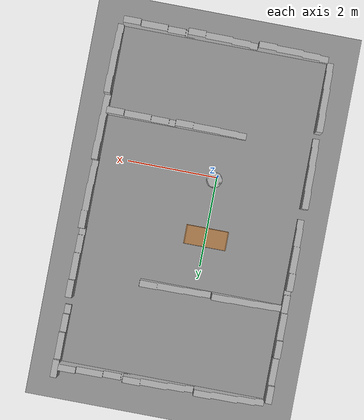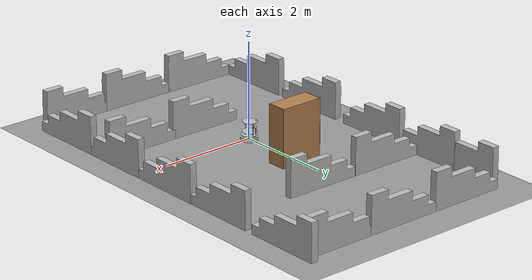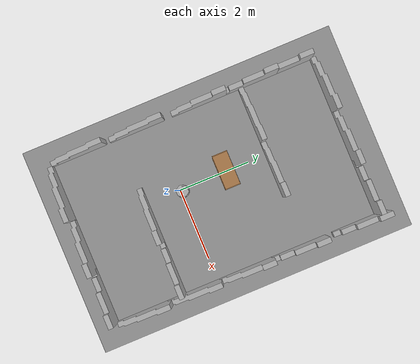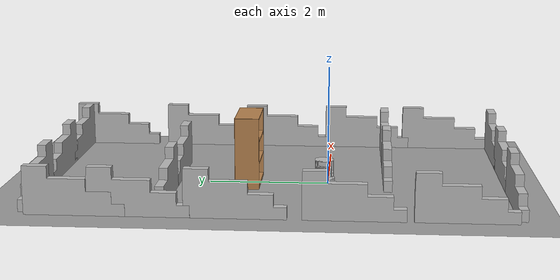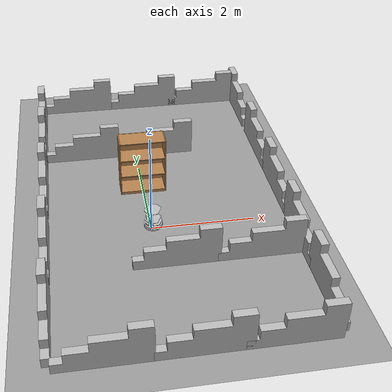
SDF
<sdf version="1.4">
 <world name="default">
  <light name="sun" type="directional">
   <pose>0 0 10 0 -0 0</pose>
   <diffuse>0.8 0.8 0.8 1</diffuse>
   <specular>0.2 0.2 0.2 1</specular>
   <attenuation>
    <range>1000</range>
    <constant>0.9</constant>
    <linear>0.01</linear>
    <quadratic>0.001</quadratic>
   </attenuation>
   <direction>0.5 0.1 -0.9</direction>
  </light>
  <scene><ambient>0.4 0.4 0.4 1</ambient><background>0.7 0.7 0.7 1</background><shadows>1</shadows></scene>
  <physics type="ode">
   <max_step_size>0.01</max_step_size>
   <real_time_factor>1</real_time_factor>
   <real_time_update_rate>100</real_time_update_rate>
   <gravity>0 0 -9.8</gravity>
  </physics>
  <model name="bookshelf">
   <static>1</static>
   <link name="link">
    <inertial><mass>1</mass></inertial>
    <collision name="back">
     <pose>0 0.005 0.6 0 -0 0</pose>
     <geometry><box><size>0.9 0.01 1.2</size></box></geometry>
    </collision>
    <visual name="visual1">
     <pose>0 0.005 0.6 0 -0 0</pose>
     <geometry><box><size>0.9 0.01 1.2</size></box></geometry>
     <material>
      <script><uri>file://media/materials/scripts/gazebo.material</uri><name>Gazebo/Wood</name></script>
     </material>
    </visual>
    <collision name="left_side">
     <pose>0.45 -0.195 0.6 0 -0 0</pose>
     <geometry><box><size>0.02 0.4 1.2</size></box></geometry>
    </collision>
    <visual name="visual2">
     <pose>0.45 -0.195 0.6 0 -0 0</pose>
     <geometry><box><size>0.02 0.4 1.2</size></box></geometry>
     <material>
      <script><uri>file://media/materials/scripts/gazebo.material</uri><name>Gazebo/Wood</name></script>
     </material>
    </visual>
    <collision name="right_side">
     <pose>-0.45 -0.195 0.6 0 -0 0</pose>
     <geometry><box><size>0.02 0.4 1.2</size></box></geometry>
    </collision>
    <visual name="visual3">
     <pose>-0.45 -0.195 0.6 0 -0 0</pose>
     <geometry><box><size>0.02 0.4 1.2</size></box></geometry>
     <material>
      <script><uri>file://media/materials/scripts/gazebo.material</uri><name>Gazebo/Wood</name></script>
     </material>
    </visual>
    <collision name="bottom">
     <pose>0 -0.195 0.03 0 -0 0</pose>
     <geometry><box><size>0.88 0.4 0.06</size></box></geometry>
    </collision>
    <visual name="visual4">
     <pose>0 -0.195 0.03 0 -0 0</pose>
     <geometry><box><size>0.88 0.4 0.06</size></box></geometry>
     <material>
      <script><uri>file://media/materials/scripts/gazebo.material</uri><name>Gazebo/Wood</name></script>
     </material>
    </visual>
    <collision name="top">
     <pose>0 -0.195 1.19 0 -0 0</pose>
     <geometry><box><size>0.88 0.4 0.02</size></box></geometry>
    </collision>
    <visual name="visual5">
     <pose>0 -0.195 1.19 0 -0 0</pose>
     <geometry><box><size>0.88 0.4 0.02</size></box></geometry>
     <material>
      <script><uri>file://media/materials/scripts/gazebo.material</uri><name>Gazebo/Wood</name></script>
     </material>
    </visual>
    <collision name="low_shelf">
     <pose>0 -0.195 0.43 0 -0 0</pose>
     <geometry><box><size>0.88 0.4 0.02</size></box></geometry>
    </collision>
    <visual name="visual6">
     <pose>0 -0.195 0.43 0 -0 0</pose>
     <geometry><box><size>0.88 0.4 0.02</size></box></geometry>
     <material>
      <script><uri>file://media/materials/scripts/gazebo.material</uri><name>Gazebo/Wood</name></script>
     </material>
    </visual>
    <collision name="high_shelf">
     <pose>0 -0.195 0.8 0 -0 0</pose>
     <geometry><box><size>0.88 0.4 0.02</size></box></geometry>
    </collision>
    <visual name="visual7">
     <pose>0 -0.195 0.8 0 -0 0</pose>
     <geometry><box><size>0.88 0.4 0.02</size></box></geometry>
     <material>
      <script><uri>file://media/materials/scripts/gazebo.material</uri><name>Gazebo/Wood</name></script>
     </material>
    </visual>
    <velocity_decay><linear>0</linear><angular>0</angular></velocity_decay>
   </link>
   <pose>0 1.53026 0 0 -0 0</pose>
  </model>
  <model name="ground_plane_0">
   <static>1</static>
   <link name="link">
    <collision name="collision">
     <geometry><plane><normal>0 0 1</normal><size>100 100</size></plane></geometry>
     <surface><friction><ode><mu>100</mu><mu2>50</mu2></ode></friction></surface>
    </collision>
    <visual name="visual">
     <cast_shadows>0</cast_shadows>
     <geometry><plane><normal>0 0 1</normal><size>100 100</size></plane></geometry>
     <material>
      <script><uri>file://media/materials/scripts/gazebo.material</uri><name>Gazebo/Grey</name></script>
     </material>
    </visual>
    <velocity_decay><linear>0</linear><angular>0</angular></velocity_decay>
   </link>
   <pose>0.497681 0 0 0 -0 0</pose>
  </model>
  <spherical_coordinates>
   <surface_model>EARTH_WGS84</surface_model>
   <latitude_deg>0</latitude_deg>
   <longitude_deg>0</longitude_deg>
   <elevation>0</elevation>
   <heading_deg>0</heading_deg>
  </spherical_coordinates>
  <model name="block_wall">
   <pose>-1 -3 0.30924 0 -0 0</pose>
   <static>1</static>
   <link name="blocks">
    <collision name="collision">
     <geometry><mesh><uri>model://drc_practice_block_wall/meshes/block_wall.dae</uri></mesh></geometry>
     <surface>
      <bounce><restitution_coefficient>0</restitution_coefficient><threshold>100000</threshold></bounce>
      <friction><ode><mu>100</mu><mu2>50</mu2></ode></friction>
      <contact>
       <ode><soft_cfm>0</soft_cfm><soft_erp>0.2</soft_erp><max_vel>0</max_vel><min_depth>0</min_depth></ode>
      </contact>
     </surface>
    </collision>
    <visual name="visual">
     <geometry><mesh><uri>model://drc_practice_block_wall/meshes/block_wall.dae</uri></mesh></geometry>
    </visual>
    <velocity_decay><linear>0</linear><angular>0</angular></velocity_decay>
   </link>
  </model>
  <model name="block_wall_0">
   <pose>0.563322 -3 0.30924 0 -0 0</pose>
   <static>1</static>
   <link name="blocks">
    <collision name="collision">
     <geometry><mesh><uri>model://drc_practice_block_wall/meshes/block_wall.dae</uri></mesh></geometry>
     <surface>
      <bounce><restitution_coefficient>0</restitution_coefficient><threshold>100000</threshold></bounce>
      <friction><ode><mu>100</mu><mu2>50</mu2></ode></friction>
      <contact>
       <ode><soft_cfm>0</soft_cfm><soft_erp>0.2</soft_erp><max_vel>0</max_vel><min_depth>0</min_depth></ode>
      </contact>
     </surface>
    </collision>
    <visual name="visual">
     <geometry><mesh><uri>model://drc_practice_block_wall/meshes/block_wall.dae</uri></mesh></geometry>
    </visual>
    <velocity_decay><linear>0</linear><angular>0</angular></velocity_decay>
   </link>
  </model>
  <model name="block_wall_1">
   <pose>2 -3 0.30924 0 -0 0</pose>
   <static>1</static>
   <link name="blocks">
    <collision name="collision">
     <geometry><mesh><uri>model://drc_practice_block_wall/meshes/block_wall.dae</uri></mesh></geometry>
     <surface>
      <bounce><restitution_coefficient>0</restitution_coefficient><threshold>100000</threshold></bounce>
      <friction><ode><mu>100</mu><mu2>50</mu2></ode></friction>
      <contact>
       <ode><soft_cfm>0</soft_cfm><soft_erp>0.2</soft_erp><max_vel>0</max_vel><min_depth>0</min_depth></ode>
      </contact>
     </surface>
    </collision>
    <visual name="visual">
     <geometry><mesh><uri>model://drc_practice_block_wall/meshes/block_wall.dae</uri></mesh></geometry>
    </visual>
    <velocity_decay><linear>0</linear><angular>0</angular></velocity_decay>
   </link>
  </model>
  <model name="mobile_base">
   <link name="base_footprint">
    <inertial>
     <pose>-0.00263512 -4.10874e-05 0.129243 0 -0 0</pose>
     <mass>4.6973</mass>
     <inertia>
      <ixx>0.1365</ixx>
      <ixy>-2.51802e-05</ixy>
      <ixz>0.0108194</ixz>
      <iyy>0.132157</iyy>
      <iyz>4.89572e-05</iyz>
      <izz>0.0741648</izz>
     </inertia>
    </inertial>
    <collision name="base_footprint_collision_base_link">
     <pose>0 0 0.06969 0 -0 0</pose>
     <geometry><cylinder><length>0.10938</length><radius>0.178</radius></cylinder></geometry>
     <surface><friction><ode><mu>0.3</mu><mu2>0.3</mu2></ode></friction></surface>
    </collision>
    <collision name="base_footprint_collision_camera_link">
     <pose>-0.087 -0.0015 0.2972 0 -0 0</pose>
     <geometry><box><size>0.073 0.276 0.072</size></box></geometry>
    </collision>
    <collision name="base_footprint_collision_caster_back_link">
     <pose>-0.135 0 0.0192 -1.5708 0 0</pose>
     <geometry><cylinder><length>0.0176</length><radius>0.017</radius></cylinder></geometry>
     <surface>
      <contact><ode><kp>1e+06</kp><kd>100</kd><max_vel>1</max_vel><min_depth>0.001</min_depth></ode></contact>
      <friction><ode><mu>0</mu><mu2>0</mu2></ode></friction>
     </surface>
    </collision>
    <collision name="base_footprint_collision_caster_front_link">
     <pose>0.115 0 0.0172 -1.5708 0 0</pose>
     <geometry><cylinder><length>0.0176</length><radius>0.017</radius></cylinder></geometry>
     <surface>
      <contact><ode><kp>1e+06</kp><kd>100</kd><max_vel>1</max_vel><min_depth>0.001</min_depth></ode></contact>
      <friction><ode><mu>0</mu><mu2>0</mu2></ode></friction>
     </surface>
    </collision>
    <collision name="base_footprint_collision_mount_asus_xtion_pro_link">
     <pose>-0.1024 0 0.2822 0 -0 0</pose>
     <geometry><box><size>0.033 0.276 0.012</size></box></geometry>
    </collision>
    <collision name="base_footprint_collision_plate_bottom_link">
     <pose>0 0 0.1408 0 -0 0</pose>
     <geometry><cylinder><length>0.006</length><radius>0.17</radius></cylinder></geometry>
    </collision>
    <collision name="base_footprint_collision_plate_middle_link">
     <pose>0 0 0.1976 0 -0 0</pose>
     <geometry><cylinder><length>0.006</length><radius>0.17</radius></cylinder></geometry>
    </collision>
    <collision name="base_footprint_collision_plate_top_link">
     <pose>0 0 0.4068 0 -0 0</pose>
     <geometry><cylinder><length>0.006</length><radius>0.17</radius></cylinder></geometry>
    </collision>
    <collision name="base_footprint_collision_pole_bottom_0_link">
     <pose>0.12 0.082 0.113 0 -0 0</pose>
     <geometry><cylinder><length>0.0492</length><radius>0.006</radius></cylinder></geometry>
    </collision>
    <collision name="base_footprint_collision_pole_bottom_1_link">
     <pose>0.055 0.12 0.113 0 -0 0</pose>
     <geometry><cylinder><length>0.0492</length><radius>0.006</radius></cylinder></geometry>
    </collision>
    <collision name="base_footprint_collision_pole_bottom_2_link">
     <pose>-0.055 0.12 0.113 0 -0 0</pose>
     <geometry><cylinder><length>0.0492</length><radius>0.006</radius></cylinder></geometry>
    </collision>
    <collision name="base_footprint_collision_pole_bottom_3_link">
     <pose>0.12 -0.082 0.113 0 -0 0</pose>
     <geometry><cylinder><length>0.0492</length><radius>0.006</radius></cylinder></geometry>
    </collision>
    <collision name="base_footprint_collision_pole_bottom_4_link">
     <pose>0.055 -0.12 0.113 0 -0 0</pose>
     <geometry><cylinder><length>0.0492</length><radius>0.006</radius></cylinder></geometry>
    </collision>
    <collision name="base_footprint_collision_pole_bottom_5_link">
     <pose>-0.055 -0.12 0.113 0 -0 0</pose>
     <geometry><cylinder><length>0.0492</length><radius>0.006</radius></cylinder></geometry>
    </collision>
    <collision name="base_footprint_collision_pole_kinect_0_link">
     <pose>-0.1024 0.098 0.2474 0 -0 0</pose>
     <geometry><cylinder><length>0.0936</length><radius>0.006</radius></cylinder></geometry>
    </collision>
    <collision name="base_footprint_collision_pole_kinect_1_link">
     <pose>-0.1024 -0.098 0.2474 0 -0 0</pose>
     <geometry><cylinder><length>0.0936</length><radius>0.006</radius></cylinder></geometry>
    </collision>
    <collision name="base_footprint_collision_pole_middle_0_link">
     <pose>0.0381 0.1505 0.1742 0 -0 0</pose>
     <geometry><cylinder><length>0.0608</length><radius>0.006</radius></cylinder></geometry>
    </collision>
    <collision name="base_footprint_collision_pole_middle_1_link">
     <pose>0.0381 -0.1505 0.1742 0 -0 0</pose>
     <geometry><cylinder><length>0.0608</length><radius>0.006</radius></cylinder></geometry>
    </collision>
    <collision name="base_footprint_collision_pole_middle_2_link">
     <pose>-0.0381 0.1505 0.1742 0 -0 0</pose>
     <geometry><cylinder><length>0.0608</length><radius>0.006</radius></cylinder></geometry>
    </collision>
    <collision name="base_footprint_collision_pole_middle_3_link">
     <pose>-0.0381 -0.1505 0.1742 0 -0 0</pose>
     <geometry><cylinder><length>0.0608</length><radius>0.006</radius></cylinder></geometry>
    </collision>
    <collision name="base_footprint_collision_pole_top_0_link">
     <pose>0.0381 0.1505 0.3022 0 -0 0</pose>
     <geometry><cylinder><length>0.2032</length><radius>0.006</radius></cylinder></geometry>
    </collision>
    <collision name="base_footprint_collision_pole_top_1_link">
     <pose>0.0381 -0.1505 0.3022 0 -0 0</pose>
     <geometry><cylinder><length>0.2032</length><radius>0.006</radius></cylinder></geometry>
    </collision>
    <collision name="base_footprint_collision_pole_top_2_link">
     <pose>-0.0381 0.1505 0.3022 0 -0 0</pose>
     <geometry><cylinder><length>0.2032</length><radius>0.006</radius></cylinder></geometry>
    </collision>
    <collision name="base_footprint_collision_pole_top_3_link">
     <pose>-0.0381 -0.1505 0.3022 0 -0 0</pose>
     <geometry><cylinder><length>0.2032</length><radius>0.006</radius></cylinder></geometry>
    </collision>
    <visual name="base_footprint_visual_base_link">
     <pose>0.001 0 0.06219 0 -0 0</pose>
     <geometry>
      <mesh><scale>1 1 1</scale><uri>/opt/ros/indigo/share/kobuki_description/meshes/main_body.dae</uri></mesh>
     </geometry>
    </visual>
    <visual name="base_footprint_visual_camera_link">
     <pose>-0.102 0.002 0.3012 0 -0 0</pose>
     <geometry>
      <mesh>
       <scale>1 1 1</scale>
       <uri>/opt/ros/indigo/share/turtlebot_description/meshes/sensors/xtion_pro_camera.dae</uri>
      </mesh>
     </geometry>
    </visual>
    <visual name="base_footprint_visual_mount_asus_xtion_pro_link">
     <pose>-0.1024 0 0.2822 -1.5708 0 0</pose>
     <geometry>
      <mesh>
       <scale>1 1 1</scale>
       <uri>/opt/ros/indigo/share/turtlebot_description/meshes/sensors/xtion_pro_stack.dae</uri>
      </mesh>
     </geometry>
    </visual>
    <visual name="base_footprint_visual_plate_bottom_link">
     <pose>0.02364 0 0.1408 0 -0 0</pose>
     <geometry>
      <mesh>
       <scale>1 1 1</scale>
       <uri>/opt/ros/indigo/share/turtlebot_description/meshes/stacks/hexagons/plate_bottom.dae</uri>
      </mesh>
     </geometry>
    </visual>
    <visual name="base_footprint_visual_plate_middle_link">
     <pose>-0.01364 0 0.1976 0 -0 0</pose>
     <geometry>
      <mesh>
       <scale>1 1 1</scale>
       <uri>/opt/ros/indigo/share/turtlebot_description/meshes/stacks/hexagons/plate_middle.dae</uri>
      </mesh>
     </geometry>
    </visual>
    <visual name="base_footprint_visual_plate_top_link">
     <pose>-0.01364 0 0.4068 0 -0 0</pose>
     <geometry>
      <mesh>
       <scale>1 1 1</scale>
       <uri>/opt/ros/indigo/share/turtlebot_description/meshes/stacks/hexagons/plate_top.dae</uri>
      </mesh>
     </geometry>
    </visual>
    <visual name="base_footprint_visual_pole_bottom_0_link">
     <pose>0.12 0.082 0.113 0 -0 0</pose>
     <geometry>
      <mesh>
       <scale>1 1 1</scale>
       <uri>/opt/ros/indigo/share/turtlebot_description/meshes/stacks/hexagons/pole_bottom.dae</uri>
      </mesh>
     </geometry>
    </visual>
    <visual name="base_footprint_visual_pole_bottom_1_link">
     <pose>0.055 0.12 0.113 0 -0 0</pose>
     <geometry>
      <mesh>
       <scale>1 1 1</scale>
       <uri>/opt/ros/indigo/share/turtlebot_description/meshes/stacks/hexagons/pole_bottom.dae</uri>
      </mesh>
     </geometry>
    </visual>
    <visual name="base_footprint_visual_pole_bottom_2_link">
     <pose>-0.055 0.12 0.113 0 -0 0</pose>
     <geometry>
      <mesh>
       <scale>1 1 1</scale>
       <uri>/opt/ros/indigo/share/turtlebot_description/meshes/stacks/hexagons/pole_bottom.dae</uri>
      </mesh>
     </geometry>
    </visual>
    <visual name="base_footprint_visual_pole_bottom_3_link">
     <pose>0.12 -0.082 0.113 0 -0 0</pose>
     <geometry>
      <mesh>
       <scale>1 1 1</scale>
       <uri>/opt/ros/indigo/share/turtlebot_description/meshes/stacks/hexagons/pole_bottom.dae</uri>
      </mesh>
     </geometry>
    </visual>
    <visual name="base_footprint_visual_pole_bottom_4_link">
     <pose>0.055 -0.12 0.113 0 -0 0</pose>
     <geometry>
      <mesh>
       <scale>1 1 1</scale>
       <uri>/opt/ros/indigo/share/turtlebot_description/meshes/stacks/hexagons/pole_bottom.dae</uri>
      </mesh>
     </geometry>
    </visual>
    <visual name="base_footprint_visual_pole_bottom_5_link">
     <pose>-0.055 -0.12 0.113 0 -0 0</pose>
     <geometry>
      <mesh>
       <scale>1 1 1</scale>
       <uri>/opt/ros/indigo/share/turtlebot_description/meshes/stacks/hexagons/pole_bottom.dae</uri>
      </mesh>
     </geometry>
    </visual>
    <visual name="base_footprint_visual_pole_kinect_0_link">
     <pose>-0.1024 0.098 0.2374 0 -0 0</pose>
     <geometry>
      <mesh>
       <scale>1 1 1</scale>
       <uri>/opt/ros/indigo/share/turtlebot_description/meshes/sensors/sensor_pole.dae</uri>
      </mesh>
     </geometry>
    </visual>
    <visual name="base_footprint_visual_pole_kinect_1_link">
     <pose>-0.1024 -0.098 0.2374 0 -0 0</pose>
     <geometry>
      <mesh>
       <scale>1 1 1</scale>
       <uri>/opt/ros/indigo/share/turtlebot_description/meshes/sensors/sensor_pole.dae</uri>
      </mesh>
     </geometry>
    </visual>
    <visual name="base_footprint_visual_pole_middle_0_link">
     <pose>0.0381 0.1505 0.1742 3.14159 -2.06823e-13 3.14159</pose>
     <geometry>
      <mesh>
       <scale>1 1 1</scale>
       <uri>/opt/ros/indigo/share/turtlebot_description/meshes/stacks/hexagons/pole_middle.dae</uri>
      </mesh>
     </geometry>
    </visual>
    <visual name="base_footprint_visual_pole_middle_1_link">
     <pose>0.0381 -0.1505 0.1742 3.14159 -2.06823e-13 3.14159</pose>
     <geometry>
      <mesh>
       <scale>1 1 1</scale>
       <uri>/opt/ros/indigo/share/turtlebot_description/meshes/stacks/hexagons/pole_middle.dae</uri>
      </mesh>
     </geometry>
    </visual>
    <visual name="base_footprint_visual_pole_middle_2_link">
     <pose>-0.0381 0.1505 0.1742 3.14159 -2.06823e-13 3.14159</pose>
     <geometry>
      <mesh>
       <scale>1 1 1</scale>
       <uri>/opt/ros/indigo/share/turtlebot_description/meshes/stacks/hexagons/pole_middle.dae</uri>
      </mesh>
     </geometry>
    </visual>
    <visual name="base_footprint_visual_pole_middle_3_link">
     <pose>-0.0381 -0.1505 0.1742 3.14159 -2.06823e-13 3.14159</pose>
     <geometry>
      <mesh>
       <scale>1 1 1</scale>
       <uri>/opt/ros/indigo/share/turtlebot_description/meshes/stacks/hexagons/pole_middle.dae</uri>
      </mesh>
     </geometry>
    </visual>
    <visual name="base_footprint_visual_pole_top_0_link">
     <pose>0.0381 0.1505 0.3022 0 -0 0</pose>
     <geometry>
      <mesh>
       <scale>1 1 1</scale>
       <uri>/opt/ros/indigo/share/turtlebot_description/meshes/stacks/hexagons/pole_top.dae</uri>
      </mesh>
     </geometry>
    </visual>
    <visual name="base_footprint_visual_pole_top_1_link">
     <pose>0.0381 -0.1505 0.3022 0 -0 0</pose>
     <geometry>
      <mesh>
       <scale>1 1 1</scale>
       <uri>/opt/ros/indigo/share/turtlebot_description/meshes/stacks/hexagons/pole_top.dae</uri>
      </mesh>
     </geometry>
    </visual>
    <visual name="base_footprint_visual_pole_top_2_link">
     <pose>-0.0381 0.1505 0.3022 0 -0 0</pose>
     <geometry>
      <mesh>
       <scale>1 1 1</scale>
       <uri>/opt/ros/indigo/share/turtlebot_description/meshes/stacks/hexagons/pole_top.dae</uri>
      </mesh>
     </geometry>
    </visual>
    <visual name="base_footprint_visual_pole_top_3_link">
     <pose>-0.0381 -0.1505 0.3022 0 -0 0</pose>
     <geometry>
      <mesh>
       <scale>1 1 1</scale>
       <uri>/opt/ros/indigo/share/turtlebot_description/meshes/stacks/hexagons/pole_top.dae</uri>
      </mesh>
     </geometry>
    </visual>
    <velocity_decay><linear>0</linear><angular>0</angular></velocity_decay>
    <sensor name="bumpers" type="contact">
     <always_on>1</always_on>
     <update_rate>50</update_rate>
     <visualize>1</visualize>
     <contact><collision>base_footprint_collision_base_link</collision><topic>__default_topic__</topic></contact>
     <pose>0 0 0.0102 0 -0 0</pose>
    </sensor>
    <velocity_decay><linear>0</linear><angular>0</angular></velocity_decay>
    <sensor name="camera" type="depth">
     <always_on>1</always_on>
     <update_rate>20</update_rate>
     <camera name="__default__">
      <horizontal_fov>1.0472</horizontal_fov>
      <image><format>R8G8B8</format><width>640</width><height>480</height></image>
      <clip><near>0.05</near><far>8</far></clip>
     </camera>
     <plugin name="kinect_camera_controller" filename="libgazebo_ros_openni_kinect.so">
      <cameraName>camera</cameraName>
      <alwaysOn>true</alwaysOn>
      <updateRate>10</updateRate>
      <imageTopicName>rgb/image_raw</imageTopicName>
      <depthImageTopicName>depth/image_raw</depthImageTopicName>
      <pointCloudTopicName>depth/points</pointCloudTopicName>
      <cameraInfoTopicName>rgb/camera_info</cameraInfoTopicName>
      <depthImageCameraInfoTopicName>depth/camera_info</depthImageCameraInfoTopicName>
      <frameName>camera_depth_optical_frame</frameName>
      <baseline>0.1</baseline>
      <distortion_k1>0.0</distortion_k1>
      <distortion_k2>0.0</distortion_k2>
      <distortion_k3>0.0</distortion_k3>
      <distortion_t1>0.0</distortion_t1>
      <distortion_t2>0.0</distortion_t2>
      <pointCloudCutoff>0.4</pointCloudCutoff>
      <robotNamespace>/</robotNamespace>
     </plugin>
     <pose>-0.087 -0.0015 0.2972 0 -0 0</pose>
    </sensor>
    <velocity_decay><linear>0</linear><angular>0</angular></velocity_decay>
    <velocity_decay><linear>0</linear><angular>0</angular></velocity_decay>
    <velocity_decay><linear>0</linear><angular>0</angular></velocity_decay>
    <sensor name="cliff_sensor_front" type="ray">
     <always_on>1</always_on>
     <update_rate>50</update_rate>
     <visualize>1</visualize>
     <ray>
      <scan>
       <horizontal>
        <samples>50</samples>
        <resolution>1</resolution>
        <min_angle>-0.0436</min_angle>
        <max_angle>0.0436</max_angle>
       </horizontal>
      </scan>
      <range><min>0.01</min><max>0.15</max><resolution>1</resolution></range>
     </ray>
     <pose>0.156 0 0.0316 3.14159 1.57079 3.14159</pose>
    </sensor>
    <velocity_decay><linear>0</linear><angular>0</angular></velocity_decay>
    <sensor name="cliff_sensor_left" type="ray">
     <always_on>1</always_on>
     <update_rate>50</update_rate>
     <visualize>1</visualize>
     <ray>
      <scan>
       <horizontal>
        <samples>50</samples>
        <resolution>1</resolution>
        <min_angle>-0.0436</min_angle>
        <max_angle>0.0436</max_angle>
       </horizontal>
      </scan>
      <range><min>0.01</min><max>0.15</max><resolution>1</resolution></range>
     </ray>
     <pose>0.08734 0.13601 0.0316 3.14159 1.57079 3.14159</pose>
    </sensor>
    <velocity_decay><linear>0</linear><angular>0</angular></velocity_decay>
    <sensor name="cliff_sensor_right" type="ray">
     <always_on>1</always_on>
     <update_rate>50</update_rate>
     <visualize>1</visualize>
     <ray>
      <scan>
       <horizontal>
        <samples>50</samples>
        <resolution>1</resolution>
        <min_angle>-0.0436</min_angle>
        <max_angle>0.0436</max_angle>
       </horizontal>
      </scan>
      <range><min>0.01</min><max>0.15</max><resolution>1</resolution></range>
     </ray>
     <pose>0.085 -0.13601 0.0316 3.14159 1.57079 3.14159</pose>
    </sensor>
    <velocity_decay><linear>0</linear><angular>0</angular></velocity_decay>
    <sensor name="imu" type="imu">
     <always_on>1</always_on>
     <update_rate>50</update_rate>
     <visualize>0</visualize>
     <imu>
      <noise>
       <type>gaussian</type>
       <rate><mean>0</mean><stddev>1.96e-06</stddev><bias_mean>0</bias_mean><bias_stddev>0</bias_stddev></rate>
       <accel><mean>0</mean><stddev>0.017</stddev><bias_mean>0.1</bias_mean><bias_stddev>0.001</bias_stddev></accel>
      </noise>
     </imu>
     <pose>0.056 0.062 0.0304 0 -0 0</pose>
    </sensor>
   </link>
   <link name="wheel_left_link">
    <pose>0 0.115 0.0352 -1.5708 0 0</pose>
    <inertial>
     <mass>0.01</mass>
     <inertia><ixx>0.001</ixx><ixy>0</ixy><ixz>0</ixz><iyy>0.001</iyy><iyz>0</iyz><izz>0.001</izz></inertia>
    </inertial>
    <collision name="wheel_left_link_collision">
     <geometry><cylinder><length>0.0206</length><radius>0.0352</radius></cylinder></geometry>
     <surface>
      <contact><ode><kp>1e+06</kp><kd>100</kd><max_vel>1</max_vel><min_depth>0.001</min_depth></ode></contact>
      <friction><ode><mu>1</mu><mu2>1</mu2></ode></friction>
     </surface>
    </collision>
    <visual name="wheel_left_link_visual">
     <geometry>
      <mesh><scale>1 1 1</scale><uri>/opt/ros/indigo/share/kobuki_description/meshes/wheel.dae</uri></mesh>
     </geometry>
    </visual>
    <velocity_decay><linear>0</linear><angular>0</angular></velocity_decay>
   </link>
   <joint name="wheel_left_joint" type="revolute">
    <child>wheel_left_link</child>
    <parent>base_footprint</parent>
    <axis><xyz>0 1 0</xyz><limit><lower>-1e+16</lower><upper>1e+16</upper></limit></axis>
   </joint>
   <link name="wheel_right_link">
    <pose>0 -0.115 0.0352 -1.5708 0 0</pose>
    <inertial>
     <mass>0.01</mass>
     <inertia><ixx>0.001</ixx><ixy>0</ixy><ixz>0</ixz><iyy>0.001</iyy><iyz>0</iyz><izz>0.001</izz></inertia>
    </inertial>
    <collision name="wheel_right_link_collision">
     <geometry><cylinder><length>0.0206</length><radius>0.035</radius></cylinder></geometry>
     <surface>
      <contact><ode><kp>1e+06</kp><kd>100</kd><max_vel>1</max_vel><min_depth>0.001</min_depth></ode></contact>
      <friction><ode><mu>1</mu><mu2>1</mu2></ode></friction>
     </surface>
    </collision>
    <visual name="wheel_right_link_visual">
     <geometry>
      <mesh><scale>1 1 1</scale><uri>/opt/ros/indigo/share/kobuki_description/meshes/wheel.dae</uri></mesh>
     </geometry>
    </visual>
    <velocity_decay><linear>0</linear><angular>0</angular></velocity_decay>
   </link>
   <joint name="wheel_right_joint" type="revolute">
    <child>wheel_right_link</child>
    <parent>base_footprint</parent>
    <axis><xyz>0 1 0</xyz><limit><lower>-1e+16</lower><upper>1e+16</upper></limit></axis>
   </joint>
   <static>0</static>
   <plugin name="kobuki_controller" filename="libgazebo_ros_kobuki.so">
    <publish_tf>1</publish_tf>
    <left_wheel_joint_name>wheel_left_joint</left_wheel_joint_name>
    <right_wheel_joint_name>wheel_right_joint</right_wheel_joint_name>
    <wheel_separation>.230</wheel_separation>
    <wheel_diameter>0.070</wheel_diameter>
    <torque>1.0</torque>
    <velocity_command_timeout>0.6</velocity_command_timeout>
    <cliff_sensor_left_name>cliff_sensor_left</cliff_sensor_left_name>
    <cliff_sensor_center_name>cliff_sensor_front</cliff_sensor_center_name>
    <cliff_sensor_right_name>cliff_sensor_right</cliff_sensor_right_name>
    <cliff_detection_threshold>0.04</cliff_detection_threshold>
    <bumper_name>bumpers</bumper_name>
    <imu_name>imu</imu_name>
    <robotNamespace>/</robotNamespace>
   </plugin>
   <pose>0.046742 0.063404 -0.001131 0.000483 -0.007995 -0.455534</pose>
  </model>
  <model name="block_wall_2">
   <pose>-1 4.7 0.30924 0 -0 0</pose>
   <static>1</static>
   <link name="blocks">
    <collision name="collision">
     <geometry><mesh><uri>model://drc_practice_block_wall/meshes/block_wall.dae</uri></mesh></geometry>
     <surface>
      <bounce><restitution_coefficient>0</restitution_coefficient><threshold>100000</threshold></bounce>
      <friction><ode><mu>100</mu><mu2>50</mu2></ode></friction>
      <contact>
       <ode><soft_cfm>0</soft_cfm><soft_erp>0.2</soft_erp><max_vel>0</max_vel><min_depth>0</min_depth></ode>
      </contact>
     </surface>
    </collision>
    <visual name="visual">
     <geometry><mesh><uri>model://drc_practice_block_wall/meshes/block_wall.dae</uri></mesh></geometry>
    </visual>
    <velocity_decay><linear>0</linear><angular>0</angular></velocity_decay>
   </link>
  </model>
  <model name="block_wall_3">
   <pose>0.570871 4.7 0.30924 0 -0 0</pose>
   <static>1</static>
   <link name="blocks">
    <collision name="collision">
     <geometry><mesh><uri>model://drc_practice_block_wall/meshes/block_wall.dae</uri></mesh></geometry>
     <surface>
      <bounce><restitution_coefficient>0</restitution_coefficient><threshold>100000</threshold></bounce>
      <friction><ode><mu>100</mu><mu2>50</mu2></ode></friction>
      <contact>
       <ode><soft_cfm>0</soft_cfm><soft_erp>0.2</soft_erp><max_vel>0</max_vel><min_depth>0</min_depth></ode>
      </contact>
     </surface>
    </collision>
    <visual name="visual">
     <geometry><mesh><uri>model://drc_practice_block_wall/meshes/block_wall.dae</uri></mesh></geometry>
    </visual>
    <velocity_decay><linear>0</linear><angular>0</angular></velocity_decay>
   </link>
  </model>
  <model name="block_wall_4">
   <pose>2 4.7 0.30924 0 -0 0</pose>
   <static>1</static>
   <link name="blocks">
    <collision name="collision">
     <geometry><mesh><uri>model://drc_practice_block_wall/meshes/block_wall.dae</uri></mesh></geometry>
     <surface>
      <bounce><restitution_coefficient>0</restitution_coefficient><threshold>100000</threshold></bounce>
      <friction><ode><mu>100</mu><mu2>50</mu2></ode></friction>
      <contact>
       <ode><soft_cfm>0</soft_cfm><soft_erp>0.2</soft_erp><max_vel>0</max_vel><min_depth>0</min_depth></ode>
      </contact>
     </surface>
    </collision>
    <visual name="visual">
     <geometry><mesh><uri>model://drc_practice_block_wall/meshes/block_wall.dae</uri></mesh></geometry>
    </visual>
    <velocity_decay><linear>0</linear><angular>0</angular></velocity_decay>
   </link>
  </model>
  <model name="block_wall_5">
   <pose>2.7 4.3 0.30924 0 -0 1.57</pose>
   <static>1</static>
   <link name="blocks">
    <collision name="collision">
     <geometry><mesh><uri>model://drc_practice_block_wall/meshes/block_wall.dae</uri></mesh></geometry>
     <surface>
      <bounce><restitution_coefficient>0</restitution_coefficient><threshold>100000</threshold></bounce>
      <friction><ode><mu>100</mu><mu2>50</mu2></ode></friction>
      <contact>
       <ode><soft_cfm>0</soft_cfm><soft_erp>0.2</soft_erp><max_vel>0</max_vel><min_depth>0</min_depth></ode>
      </contact>
     </surface>
    </collision>
    <visual name="visual">
     <geometry><mesh><uri>model://drc_practice_block_wall/meshes/block_wall.dae</uri></mesh></geometry>
    </visual>
    <velocity_decay><linear>0</linear><angular>0</angular></velocity_decay>
   </link>
  </model>
  <model name="block_wall_7">
   <pose>-2 4 0.30924 0 -0 1.57</pose>
   <static>1</static>
   <link name="blocks">
    <collision name="collision">
     <geometry><mesh><uri>model://drc_practice_block_wall/meshes/block_wall.dae</uri></mesh></geometry>
     <surface>
      <bounce><restitution_coefficient>0</restitution_coefficient><threshold>100000</threshold></bounce>
      <friction><ode><mu>100</mu><mu2>50</mu2></ode></friction>
      <contact>
       <ode><soft_cfm>0</soft_cfm><soft_erp>0.2</soft_erp><max_vel>0</max_vel><min_depth>0</min_depth></ode>
      </contact>
     </surface>
    </collision>
    <visual name="visual">
     <geometry><mesh><uri>model://drc_practice_block_wall/meshes/block_wall.dae</uri></mesh></geometry>
    </visual>
    <velocity_decay><linear>0</linear><angular>0</angular></velocity_decay>
   </link>
  </model>
  <model name="block_wall_8">
   <pose>-2 3 0.30924 0 -0 1.57</pose>
   <static>1</static>
   <link name="blocks">
    <collision name="collision">
     <geometry><mesh><uri>model://drc_practice_block_wall/meshes/block_wall.dae</uri></mesh></geometry>
     <surface>
      <bounce><restitution_coefficient>0</restitution_coefficient><threshold>100000</threshold></bounce>
      <friction><ode><mu>100</mu><mu2>50</mu2></ode></friction>
      <contact>
       <ode><soft_cfm>0</soft_cfm><soft_erp>0.2</soft_erp><max_vel>0</max_vel><min_depth>0</min_depth></ode>
      </contact>
     </surface>
    </collision>
    <visual name="visual">
     <geometry><mesh><uri>model://drc_practice_block_wall/meshes/block_wall.dae</uri></mesh></geometry>
    </visual>
    <velocity_decay><linear>0</linear><angular>0</angular></velocity_decay>
   </link>
  </model>
  <model name="block_wall_9">
   <pose>-2 1.51544 0.30924 0 -0 1.57</pose>
   <static>1</static>
   <link name="blocks">
    <collision name="collision">
     <geometry><mesh><uri>model://drc_practice_block_wall/meshes/block_wall.dae</uri></mesh></geometry>
     <surface>
      <bounce><restitution_coefficient>0</restitution_coefficient><threshold>100000</threshold></bounce>
      <friction><ode><mu>100</mu><mu2>50</mu2></ode></friction>
      <contact>
       <ode><soft_cfm>0</soft_cfm><soft_erp>0.2</soft_erp><max_vel>0</max_vel><min_depth>0</min_depth></ode>
      </contact>
     </surface>
    </collision>
    <visual name="visual">
     <geometry><mesh><uri>model://drc_practice_block_wall/meshes/block_wall.dae</uri></mesh></geometry>
    </visual>
    <velocity_decay><linear>0</linear><angular>0</angular></velocity_decay>
   </link>
  </model>
  <model name="block_wall_10">
   <pose>-2 -0.3 0.30924 0 -0 1.57</pose>
   <static>1</static>
   <link name="blocks">
    <collision name="collision">
     <geometry><mesh><uri>model://drc_practice_block_wall/meshes/block_wall.dae</uri></mesh></geometry>
     <surface>
      <bounce><restitution_coefficient>0</restitution_coefficient><threshold>100000</threshold></bounce>
      <friction><ode><mu>100</mu><mu2>50</mu2></ode></friction>
      <contact>
       <ode><soft_cfm>0</soft_cfm><soft_erp>0.2</soft_erp><max_vel>0</max_vel><min_depth>0</min_depth></ode>
      </contact>
     </surface>
    </collision>
    <visual name="visual">
     <geometry><mesh><uri>model://drc_practice_block_wall/meshes/block_wall.dae</uri></mesh></geometry>
    </visual>
    <velocity_decay><linear>0</linear><angular>0</angular></velocity_decay>
   </link>
  </model>
  <model name="block_wall_11">
   <pose>-2 -2 0.30924 0 -0 1.57</pose>
   <static>1</static>
   <link name="blocks">
    <collision name="collision">
     <geometry><mesh><uri>model://drc_practice_block_wall/meshes/block_wall.dae</uri></mesh></geometry>
     <surface>
      <bounce><restitution_coefficient>0</restitution_coefficient><threshold>100000</threshold></bounce>
      <friction><ode><mu>100</mu><mu2>50</mu2></ode></friction>
      <contact>
       <ode><soft_cfm>0</soft_cfm><soft_erp>0.2</soft_erp><max_vel>0</max_vel><min_depth>0</min_depth></ode>
      </contact>
     </surface>
    </collision>
    <visual name="visual">
     <geometry><mesh><uri>model://drc_practice_block_wall/meshes/block_wall.dae</uri></mesh></geometry>
    </visual>
    <velocity_decay><linear>0</linear><angular>0</angular></velocity_decay>
   </link>
  </model>
  <model name="block_wall_12">
   <pose>-1 2.57954 0.30924 0 -0 0</pose>
   <static>1</static>
   <link name="blocks">
    <collision name="collision">
     <geometry><mesh><uri>model://drc_practice_block_wall/meshes/block_wall.dae</uri></mesh></geometry>
     <surface>
      <bounce><restitution_coefficient>0</restitution_coefficient><threshold>100000</threshold></bounce>
      <friction><ode><mu>100</mu><mu2>50</mu2></ode></friction>
      <contact>
       <ode><soft_cfm>0</soft_cfm><soft_erp>0.2</soft_erp><max_vel>0</max_vel><min_depth>0</min_depth></ode>
      </contact>
     </surface>
    </collision>
    <visual name="visual">
     <geometry><mesh><uri>model://drc_practice_block_wall/meshes/block_wall.dae</uri></mesh></geometry>
    </visual>
    <velocity_decay><linear>0</linear><angular>0</angular></velocity_decay>
   </link>
  </model>
  <model name="block_wall_13">
   <pose>0.595094 2.57753 0.30924 0 -0 0</pose>
   <static>1</static>
   <link name="blocks">
    <collision name="collision">
     <geometry><mesh><uri>model://drc_practice_block_wall/meshes/block_wall.dae</uri></mesh></geometry>
     <surface>
      <bounce><restitution_coefficient>0</restitution_coefficient><threshold>100000</threshold></bounce>
      <friction><ode><mu>100</mu><mu2>50</mu2></ode></friction>
      <contact>
       <ode><soft_cfm>0</soft_cfm><soft_erp>0.2</soft_erp><max_vel>0</max_vel><min_depth>0</min_depth></ode>
      </contact>
     </surface>
    </collision>
    <visual name="visual">
     <geometry><mesh><uri>model://drc_practice_block_wall/meshes/block_wall.dae</uri></mesh></geometry>
    </visual>
    <velocity_decay><linear>0</linear><angular>0</angular></velocity_decay>
   </link>
  </model>
  <model name="block_wall_14">
   <pose>2.7 -2 0.30924 0 -0 1.57</pose>
   <static>1</static>
   <link name="blocks">
    <collision name="collision">
     <geometry><mesh><uri>model://drc_practice_block_wall/meshes/block_wall.dae</uri></mesh></geometry>
     <surface>
      <bounce><restitution_coefficient>0</restitution_coefficient><threshold>100000</threshold></bounce>
      <friction><ode><mu>100</mu><mu2>50</mu2></ode></friction>
      <contact>
       <ode><soft_cfm>0</soft_cfm><soft_erp>0.2</soft_erp><max_vel>0</max_vel><min_depth>0</min_depth></ode>
      </contact>
     </surface>
    </collision>
    <visual name="visual">
     <geometry><mesh><uri>model://drc_practice_block_wall/meshes/block_wall.dae</uri></mesh></geometry>
    </visual>
    <velocity_decay><linear>0</linear><angular>0</angular></velocity_decay>
   </link>
  </model>
  <model name="block_wall_15">
   <pose>2.7 -0.527162 0.30924 0 -0 1.57</pose>
   <static>1</static>
   <link name="blocks">
    <collision name="collision">
     <geometry><mesh><uri>model://drc_practice_block_wall/meshes/block_wall.dae</uri></mesh></geometry>
     <surface>
      <bounce><restitution_coefficient>0</restitution_coefficient><threshold>100000</threshold></bounce>
      <friction><ode><mu>100</mu><mu2>50</mu2></ode></friction>
      <contact>
       <ode><soft_cfm>0</soft_cfm><soft_erp>0.2</soft_erp><max_vel>0</max_vel><min_depth>0</min_depth></ode>
      </contact>
     </surface>
    </collision>
    <visual name="visual">
     <geometry><mesh><uri>model://drc_practice_block_wall/meshes/block_wall.dae</uri></mesh></geometry>
    </visual>
    <velocity_decay><linear>0</linear><angular>0</angular></velocity_decay>
   </link>
  </model>
  <model name="block_wall_16">
   <pose>2.7 1 0.30924 0 -0 1.57</pose>
   <static>1</static>
   <link name="blocks">
    <collision name="collision">
     <geometry><mesh><uri>model://drc_practice_block_wall/meshes/block_wall.dae</uri></mesh></geometry>
     <surface>
      <bounce><restitution_coefficient>0</restitution_coefficient><threshold>100000</threshold></bounce>
      <friction><ode><mu>100</mu><mu2>50</mu2></ode></friction>
      <contact>
       <ode><soft_cfm>0</soft_cfm><soft_erp>0.2</soft_erp><max_vel>0</max_vel><min_depth>0</min_depth></ode>
      </contact>
     </surface>
    </collision>
    <visual name="visual">
     <geometry><mesh><uri>model://drc_practice_block_wall/meshes/block_wall.dae</uri></mesh></geometry>
    </visual>
    <velocity_decay><linear>0</linear><angular>0</angular></velocity_decay>
   </link>
  </model>
  <model name="block_wall_17">
   <pose>2.7 2.53186 0.30924 0 -0 1.57</pose>
   <static>1</static>
   <link name="blocks">
    <collision name="collision">
     <geometry><mesh><uri>model://drc_practice_block_wall/meshes/block_wall.dae</uri></mesh></geometry>
     <surface>
      <bounce><restitution_coefficient>0</restitution_coefficient><threshold>100000</threshold></bounce>
      <friction><ode><mu>100</mu><mu2>50</mu2></ode></friction>
      <contact>
       <ode><soft_cfm>0</soft_cfm><soft_erp>0.2</soft_erp><max_vel>0</max_vel><min_depth>0</min_depth></ode>
      </contact>
     </surface>
    </collision>
    <visual name="visual">
     <geometry><mesh><uri>model://drc_practice_block_wall/meshes/block_wall.dae</uri></mesh></geometry>
    </visual>
    <velocity_decay><linear>0</linear><angular>0</angular></velocity_decay>
   </link>
  </model>
  <model name="block_wall_18">
   <pose>2 -1 0.30924 0 -0 0</pose>
   <static>1</static>
   <link name="blocks">
    <collision name="collision">
     <geometry><mesh><uri>model://drc_practice_block_wall/meshes/block_wall.dae</uri></mesh></geometry>
     <surface>
      <bounce><restitution_coefficient>0</restitution_coefficient><threshold>100000</threshold></bounce>
      <friction><ode><mu>100</mu><mu2>50</mu2></ode></friction>
      <contact>
       <ode><soft_cfm>0</soft_cfm><soft_erp>0.2</soft_erp><max_vel>0</max_vel><min_depth>0</min_depth></ode>
      </contact>
     </surface>
    </collision>
    <visual name="visual">
     <geometry><mesh><uri>model://drc_practice_block_wall/meshes/block_wall.dae</uri></mesh></geometry>
    </visual>
    <velocity_decay><linear>0</linear><angular>0</angular></velocity_decay>
   </link>
  </model>
  <model name="block_wall_19">
   <pose>0.469246 -1 0.30924 0 -0 0</pose>
   <static>1</static>
   <link name="blocks">
    <collision name="collision">
     <geometry><mesh><uri>model://drc_practice_block_wall/meshes/block_wall.dae</uri></mesh></geometry>
     <surface>
      <bounce><restitution_coefficient>0</restitution_coefficient><threshold>100000</threshold></bounce>
      <friction><ode><mu>100</mu><mu2>50</mu2></ode></friction>
      <contact>
       <ode><soft_cfm>0</soft_cfm><soft_erp>0.2</soft_erp><max_vel>0</max_vel><min_depth>0</min_depth></ode>
      </contact>
     </surface>
    </collision>
    <visual name="visual">
     <geometry><mesh><uri>model://drc_practice_block_wall/meshes/block_wall.dae</uri></mesh></geometry>
    </visual>
    <velocity_decay><linear>0</linear><angular>0</angular></velocity_decay>
   </link>
  </model>
 </world>
</sdf>
